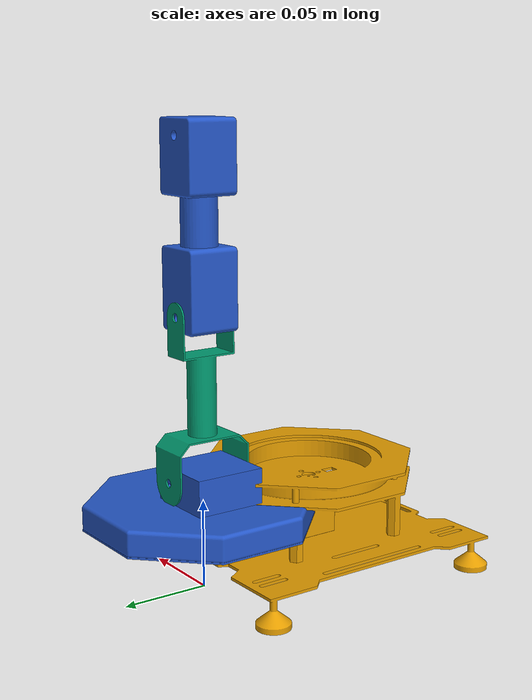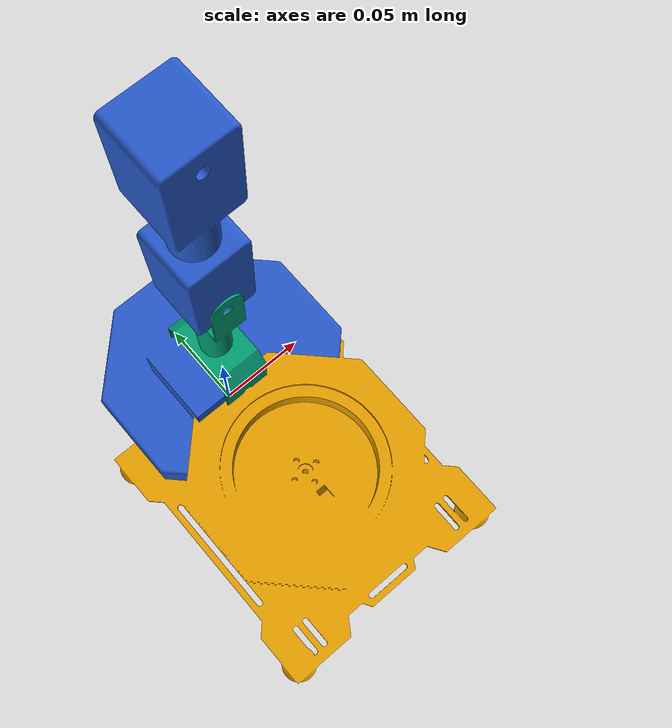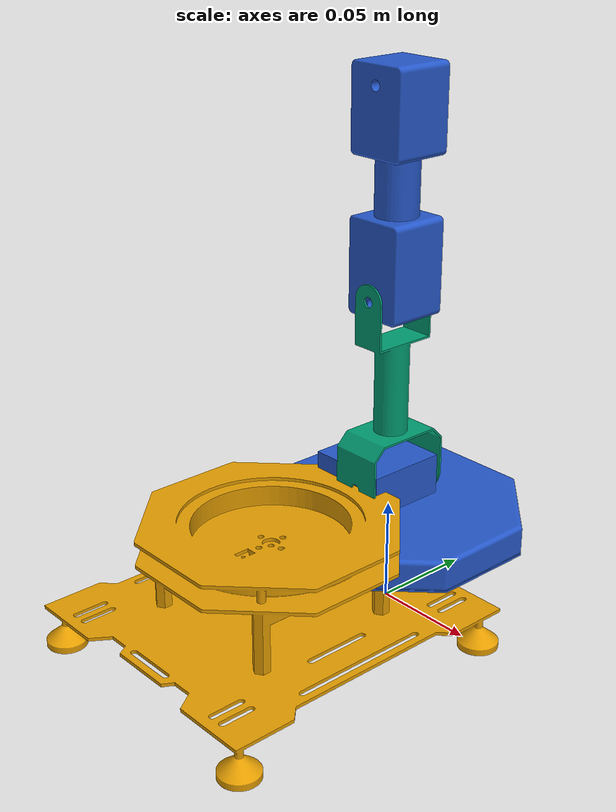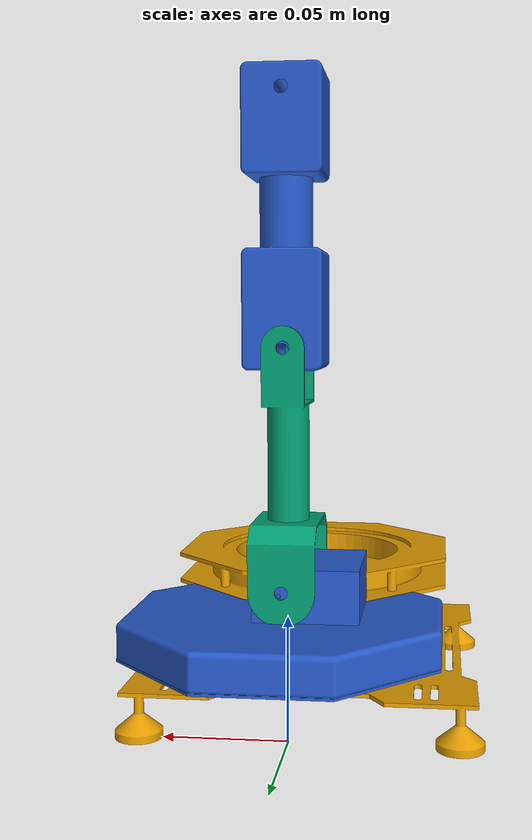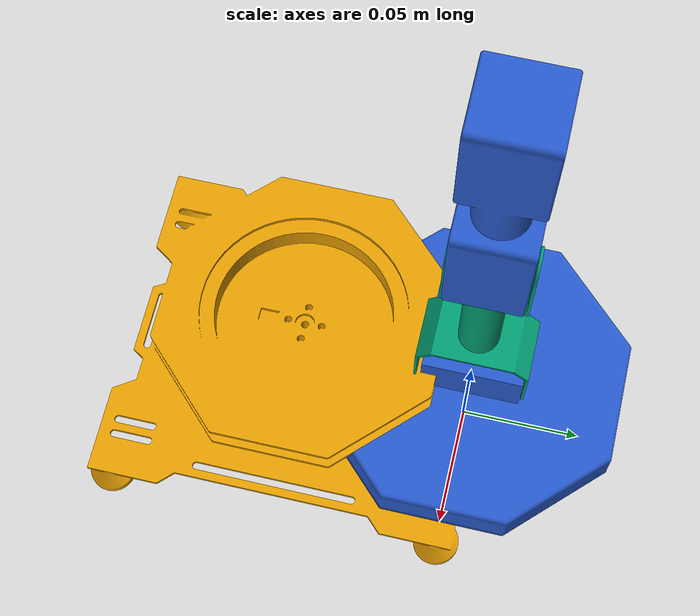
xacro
<?xml version="1.0"?>
<robot xmlns:xacro="http://www.ros.org/wiki/xacro" name="six_dof_arm">

  <!-- Dimensions are illustrative, in metres. -->
  <xacro:property name="base_height" value="0.08"/>
  <xacro:property name="link1_length" value="0.12"/>
  <xacro:property name="link2_length" value="0.15"/>
  <xacro:property name="link3_length" value="0.12"/>
  <xacro:property name="link_radius" value="0.025"/>

  <!-- Base 1: fixed base -->
  <link name="base_link">
    <visual>
      <origin xyz="-0.077 -0.070 0" rpy="0 0 0"/>
      <geometry>
        <mesh filename="package://six_dof_arm/meshes/Base1.STL"
              scale="0.001 0.001 0.001"/>
      </geometry>
    </visual>
  </link>

  <!-- Joint 1: rotating base -->
  <link name="base2_link">
    <visual>
      <origin xyz="-0.06 -0.06 0.003" rpy="0 0 0"/>
      <geometry>
        <mesh filename="package://six_dof_arm/meshes/Base2.STL"
              scale="0.001 0.001 0.001"/>
      </geometry>
      <material name="base2_blue">
        <color rgba="0.15 0.35 0.8 1.0"/>
    </material>
    </visual>
  </link>
  <joint name="joint1" type="revolute">
    <parent link="base_link"/>
    <child link="base2_link"/>
    <origin xyz="0 0 0.035" rpy="0 0 0"/>
    <axis xyz="0 0 1"/>
    <limit lower="-3.14159" upper="3.14159"
          effort="10" velocity="1.0"/>
  </joint>

  <!-- Joint 2: first arm -->
  <link name="link1">
    <visual>
      <origin xyz="-0.013 -0.022 -0.008" rpy="0 0 0"/>
      <geometry>
        <mesh filename="package://six_dof_arm/meshes/Link1.STL"
              scale="0.001 0.001 0.001"/>
      </geometry>
    </visual>
  </link>
  <joint name="joint2" type="revolute">
    <parent link="base2_link"/>
    <child link="link1"/>
    <origin xyz="0 0 0.025" rpy="0 0 0"/>
    <axis xyz="0 1 0"/>
    <limit lower="-1.5708" upper="1.5708"
          effort="10" velocity="1.0"/>
  </joint>

  <!-- Joint 3: second arm -->
  <link name="link2">
    <visual>
      <origin xyz="-0.0148 -0.0145 -0.009" rpy="0 0 0"/>
      <geometry>
        <mesh filename="package://six_dof_arm/meshes/Link2.STL"
              scale="0.001 0.001 0.001"/>
      </geometry>
      <material name="base2_blue">
        <color rgba="0.15 0.35 0.8 1.0"/>
      </material>

    </visual>
  </link>

  <joint name="joint3" type="revolute">
    <parent link="link1"/>
    <child link="link2"/>
    <origin xyz="0 0 0.095" rpy="0 0 0"/>
    <axis xyz="0 1 0"/>
    <limit lower="-2.0" upper="2.0"
          effort="8" velocity="1.0"/>
  </joint>

</robot>
